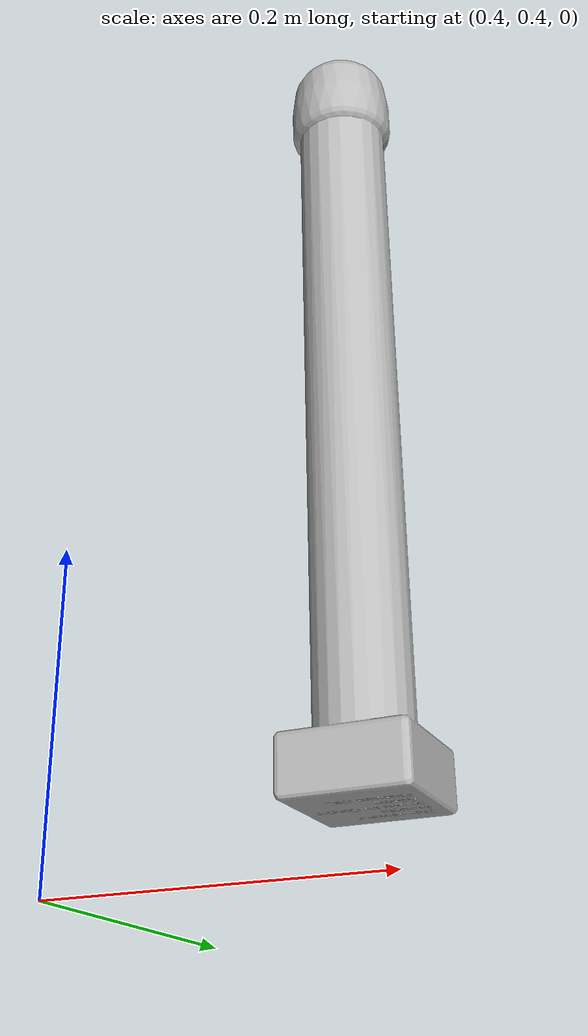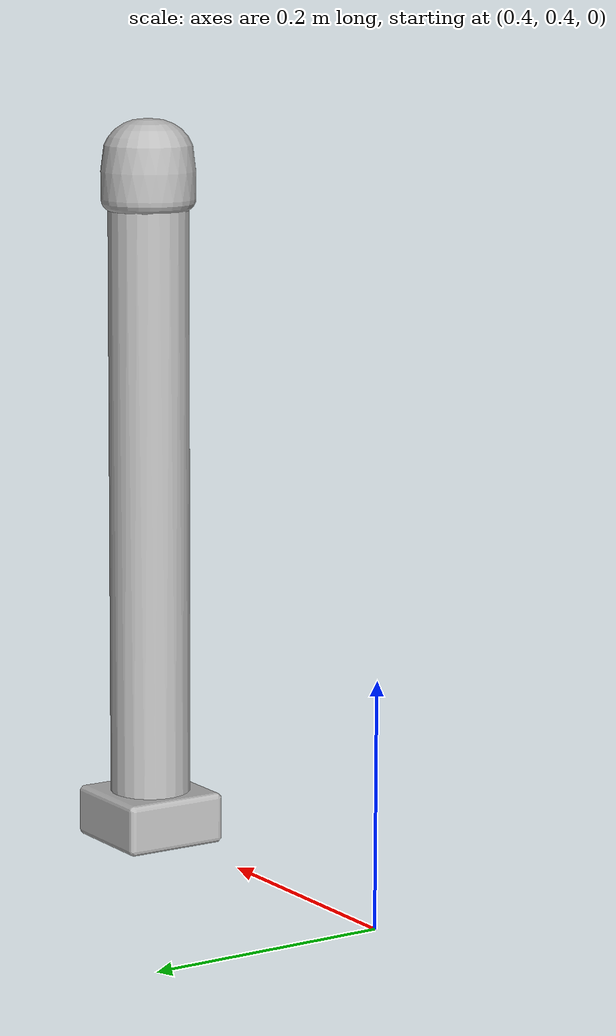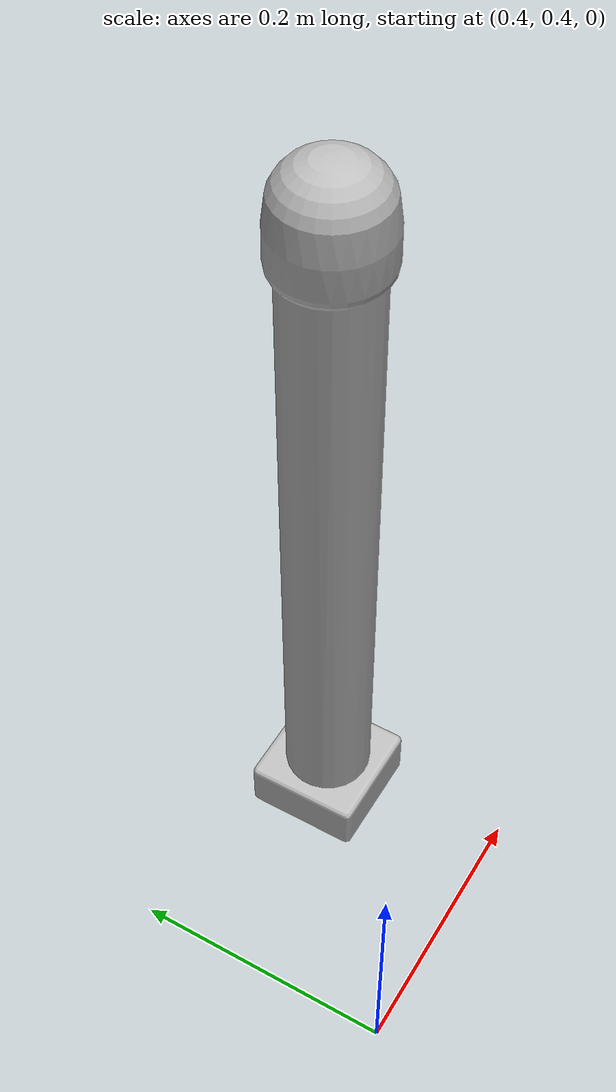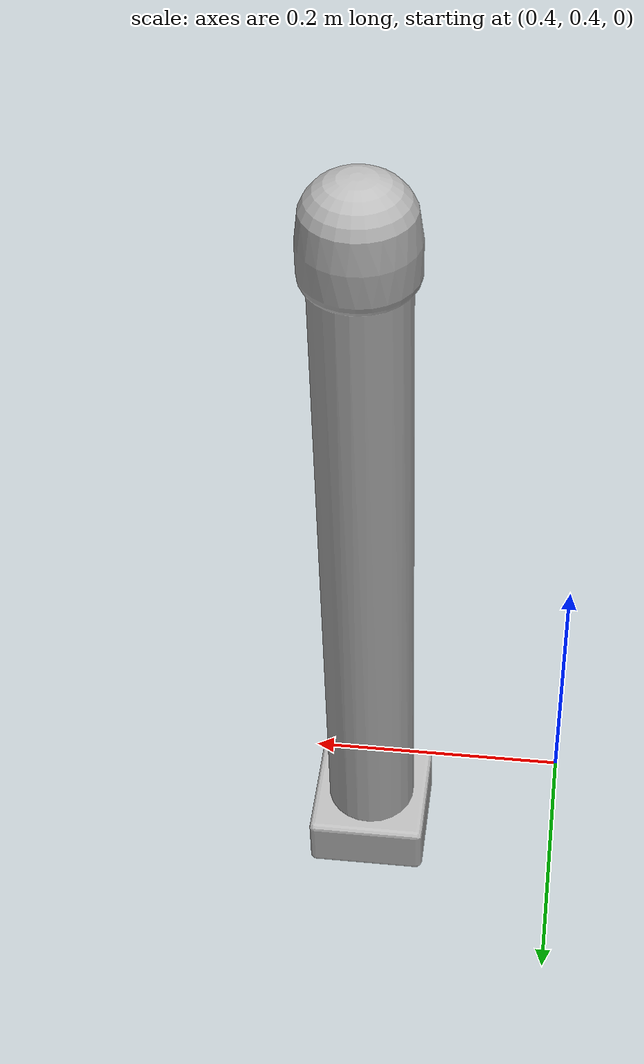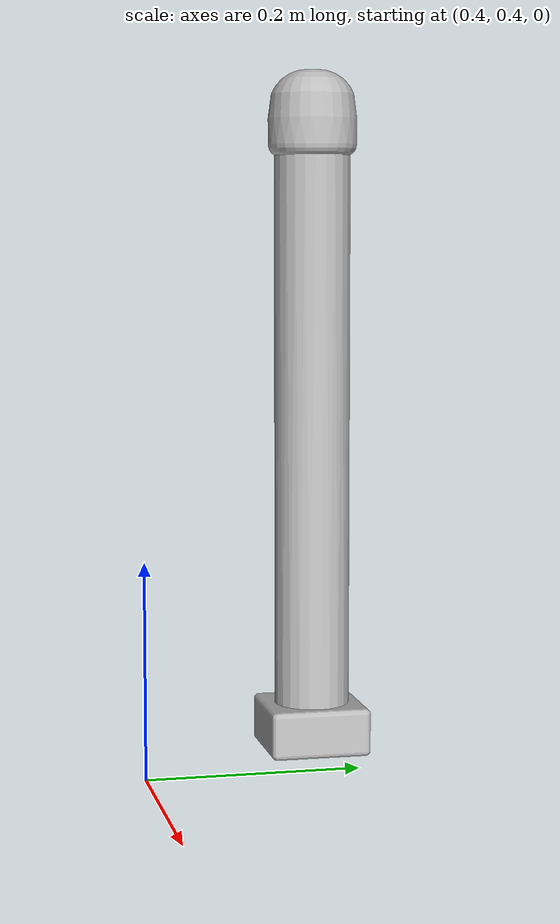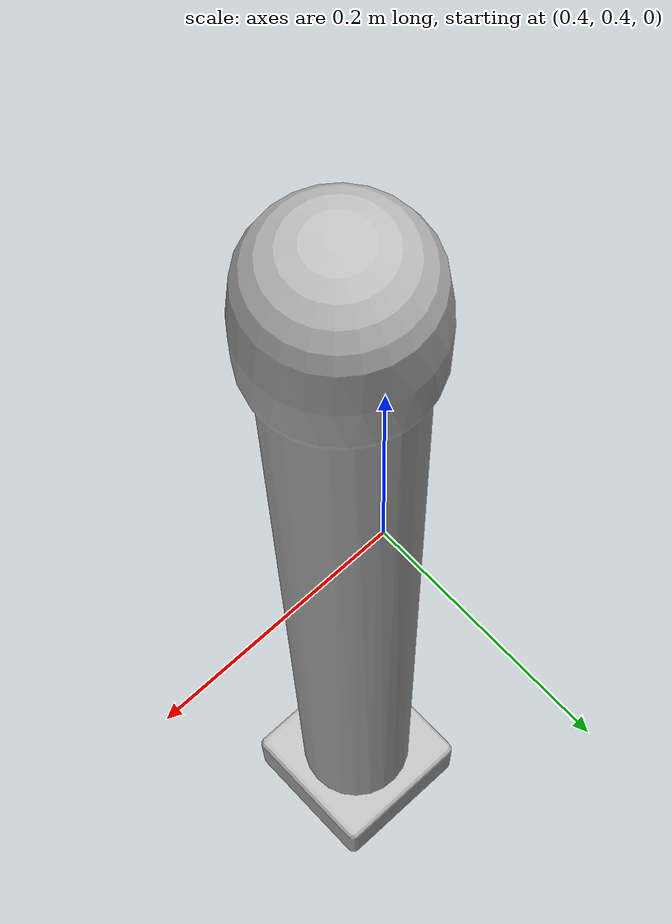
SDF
<?xml version='1.0'?>
<sdf version="1.4">
  <model name="nad">
    <pose>0.58 0.48 0.1 0 3.14 0</pose>
    <static>true</static>
    <link name="link">
      <inertial>
        <mass>1.0</mass>
        <inertia> <!-- inertias are tricky to compute -->
          <!-- http://gazebosim.org/tutorials?tut=inertia&cat=build_robot -->
          <ixx>0.083</ixx>       <!-- for a box: ixx = 0.083 * mass * (y*y + z*z) -->
          <ixy>0.0</ixy>         <!-- for a box: ixy = 0 -->
          <ixz>0.0</ixz>         <!-- for a box: ixz = 0 -->
          <iyy>0.083</iyy>       <!-- for a box: iyy = 0.083 * mass * (x*x + z*z) -->
          <iyz>0.0</iyz>         <!-- for a box: iyz = 0 -->
          <izz>0.083</izz>       <!-- for a box: izz = 0.083 * mass * (x*x + y*y) -->
        </inertia>
      </inertial>
      <collision name="collision">
        <geometry>
          <mesh><uri>/home/sam/robotics_group_v/locosim/models/nad/nad.stl</uri></mesh>
        </geometry>
      </collision>
      <visual name="visual">
        <geometry>
          <mesh><uri>/home/sam/robotics_group_v/locosim/models/nad/nad.stl</uri>
          <scale>0.021 0.021 0.02</scale></mesh>
        </geometry>
      </visual>
    </link>
  </model>
</sdf>
